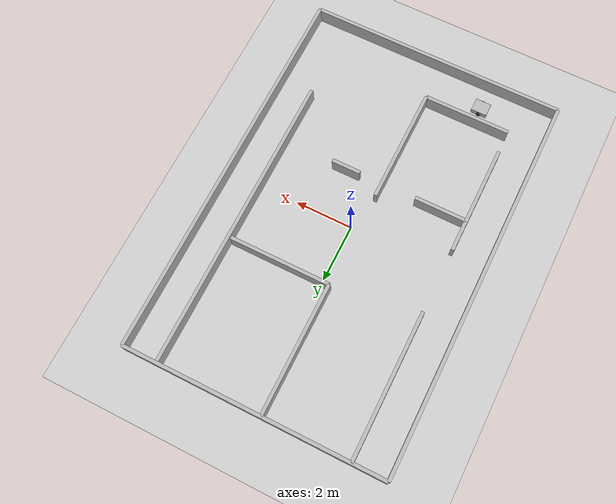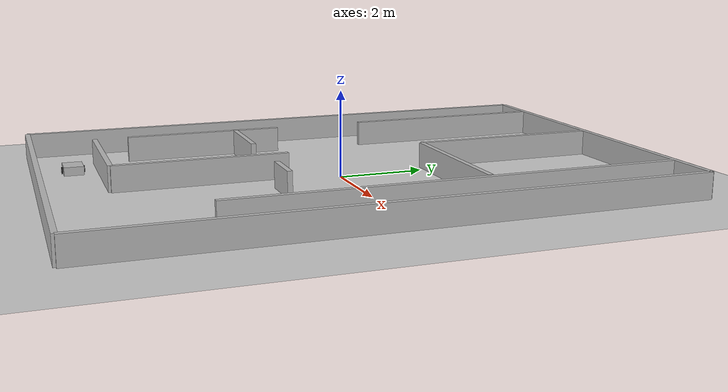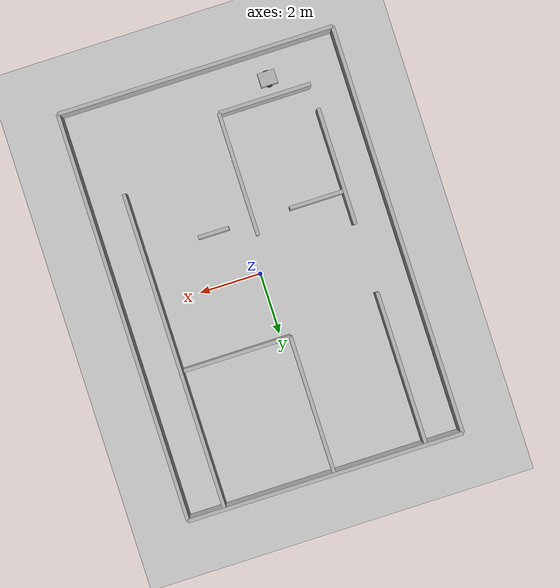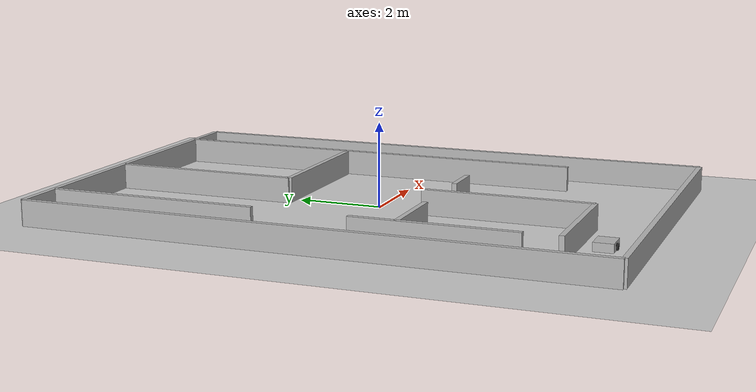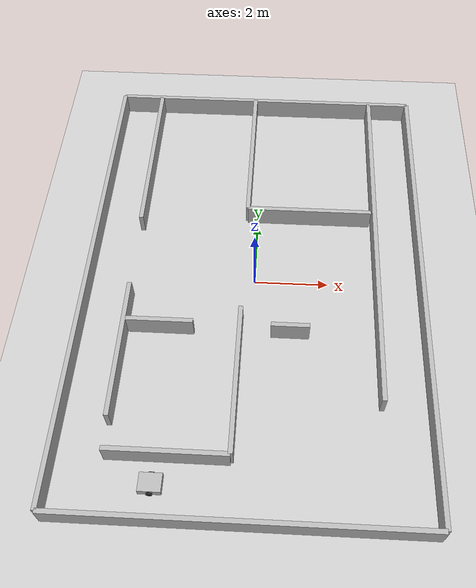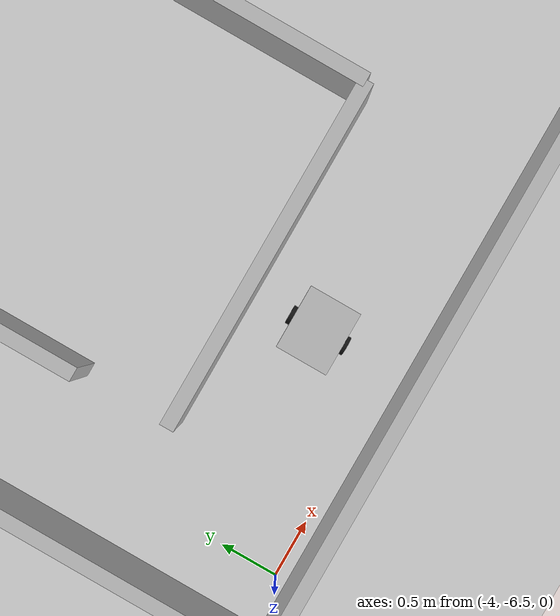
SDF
<?xml version="1.0"?>
<sdf version="1.7">
  <world name="competition_home">
    <gui fullscreen="0">
      <camera name="user_camera">
        <pose>0 0 18 0 1.5708 0</pose>
        <view_controller>orbit</view_controller>
        <projection_type>perspective</projection_type>
      </camera>
    </gui>
    <gravity>0 0 -9.81</gravity>
    <scene><ambient>0.7 0.7 0.7 1</ambient><background>0.15 0.15 0.15 1</background></scene>
    <physics name="default_physics" type="ode"><max_step_size>0.004</max_step_size><real_time_factor>1</real_time_factor></physics>
    <include><uri>model://ground_plane</uri></include>
    <include><uri>model://sun</uri></include>
    <model name="arena_walls">
      <static>true</static>
      <link name="walls">
        <collision name="outer_top"><geometry><box><size>9.0 0.12 0.6</size></box></geometry><pose>0 6.665 0.3 0 0 0</pose></collision>
        <visual name="v_outer_top"><geometry><box><size>9.0 0.12 0.6</size></box></geometry><pose>0 6.665 0.3 0 0 0</pose></visual>
        <collision name="outer_bottom"><geometry><box><size>9.0 0.12 0.6</size></box></geometry><pose>0 -6.665 0.3 0 0 0</pose></collision>
        <visual name="v_outer_bottom"><geometry><box><size>9.0 0.12 0.6</size></box></geometry><pose>0 -6.665 0.3 0 0 0</pose></visual>
        <collision name="outer_left"><geometry><box><size>0.12 13.33 0.6</size></box></geometry><pose>-4.5 0 0.3 0 0 0</pose></collision>
        <visual name="v_outer_left"><geometry><box><size>0.12 13.33 0.6</size></box></geometry><pose>-4.5 0 0.3 0 0 0</pose></visual>
        <collision name="outer_right"><geometry><box><size>0.12 13.33 0.6</size></box></geometry><pose>4.5 0 0.3 0 0 0</pose></collision>
        <visual name="v_outer_right"><geometry><box><size>0.12 13.33 0.6</size></box></geometry><pose>4.5 0 0.3 0 0 0</pose></visual>
        <!-- Inner side walls. Door openings are represented by separate segments. -->
        <collision name="inner_left_top"><geometry><box><size>0.12 5.0 0.6</size></box></geometry><pose>-3.3 4.165 0.3 0 0 0</pose></collision>
        <visual name="v_inner_left_top"><geometry><box><size>0.12 5.0 0.6</size></box></geometry><pose>-3.3 4.165 0.3 0 0 0</pose></visual>
        <collision name="inner_left_bottom"><geometry><box><size>0.12 3.8 0.6</size></box></geometry><pose>-3.3 -2.465 0.3 0 0 0</pose></collision>
        <visual name="v_inner_left_bottom"><geometry><box><size>0.12 3.8 0.6</size></box></geometry><pose>-3.3 -2.465 0.3 0 0 0</pose></visual>
        <collision name="inner_right"><geometry><box><size>0.12 10.33 0.6</size></box></geometry><pose>3.3 1.5 0.3 0 0 0</pose></collision>
        <visual name="v_inner_right"><geometry><box><size>0.12 10.33 0.6</size></box></geometry><pose>3.3 1.5 0.3 0 0 0</pose></visual>
        <!-- Bedroom: 3.50 m wide and 4.50 m deep. -->
        <collision name="bedroom_left"><geometry><box><size>0.12 4.5 0.6</size></box></geometry><pose>-0.3 4.415 0.3 0 0 0</pose></collision>
        <visual name="v_bedroom_left"><geometry><box><size>0.12 4.5 0.6</size></box></geometry><pose>-0.3 4.415 0.3 0 0 0</pose></visual>
        <collision name="bedroom_bottom"><geometry><box><size>3.5 0.12 0.6</size></box></geometry><pose>1.45 2.165 0.3 0 0 0</pose></collision>
        <visual name="v_bedroom_bottom"><geometry><box><size>3.5 0.12 0.6</size></box></geometry><pose>1.45 2.165 0.3 0 0 0</pose></visual>
        <!-- Study: 3.00 m wide and 4.00 m deep. -->
        <collision name="study_right"><geometry><box><size>0.12 4.0 0.6</size></box></geometry><pose>-0.3 -3.165 0.3 0 0 0</pose></collision>
        <visual name="v_study_right"><geometry><box><size>0.12 4.0 0.6</size></box></geometry><pose>-0.3 -3.165 0.3 0 0 0</pose></visual>
        <collision name="study_bottom"><geometry><box><size>3.0 0.12 0.6</size></box></geometry><pose>-1.8 -5.165 0.3 0 0 0</pose></collision>
        <visual name="v_study_bottom"><geometry><box><size>3.0 0.12 0.6</size></box></geometry><pose>-1.8 -5.165 0.3 0 0 0</pose></visual>
        <!-- Living/study partition with a 0.80 m door opening. -->
        <collision name="partition_left"><geometry><box><size>1.8 0.12 0.6</size></box></geometry><pose>-2.4 -1.665 0.3 0 0 0</pose></collision>
        <visual name="v_partition_left"><geometry><box><size>1.8 0.12 0.6</size></box></geometry><pose>-2.4 -1.665 0.3 0 0 0</pose></visual>
        <collision name="partition_right"><geometry><box><size>1.0 0.12 0.6</size></box></geometry><pose>1.0 -1.665 0.3 0 0 0</pose></collision>
        <visual name="v_partition_right"><geometry><box><size>1.0 0.12 0.6</size></box></geometry><pose>1.0 -1.665 0.3 0 0 0</pose></visual>
      </link>
    </model>
    <!-- Furniture placeholders aligned with the supplied plan. -->
    <model name="dining_table"><static>true</static><pose>-2.1 4.2 0.35 0 0 0</pose><link name="link"><collision name="c"><geometry><box><size>1.4 0.8 0.7</size></box></geometry></collision></link></model>
    <model name="bed"><static>true</static><pose>1.45 4.2 0.3 0 0 0</pose><link name="link"><collision name="c"><geometry><box><size>1.8 1.0 0.6</size></box></geometry></collision></link></model>
    <model name="living_sofa"><static>true</static><pose>1.2 -0.2 0.25 0 0 0</pose><link name="link"><collision name="c"><geometry><box><size>1.5 0.55 0.5</size></box></geometry></collision></link></model>
    <model name="desk"><static>true</static><pose>-1.8 -3.6 0.35 0 0 0</pose><link name="link"><collision name="c"><geometry><box><size>1.3 0.65 0.7</size></box></geometry></collision></link></model>
    <model name="robocup_mecanum_sim">
      <pose>-2.1 -5.8 0.18 0 0 0</pose>
      <link name="base_link">
        <inertial><mass>12</mass><inertia><ixx>1.0</ixx><iyy>1.0</iyy><izz>1.0</izz><ixy>0</ixy><ixz>0</ixz><iyz>0</iyz></inertia></inertial>
        <collision name="base_collision">
          <pose>0 0 0.02 0 0 0</pose>
          <geometry><box><size>0.55 0.45 0.16</size></box></geometry>
          <surface><friction><ode><mu>0.05</mu><mu2>0.05</mu2></ode></friction></surface>
        </collision>
      <visual name="base_visual"><geometry><box><size>0.55 0.45 0.20</size></box></geometry></visual>
        <sensor name="laser" type="ray">
          <pose>0 0 0.23 0 0 0</pose><update_rate>10</update_rate>
          <ray><scan><horizontal><samples>720</samples><resolution>1</resolution><min_angle>-3.14159</min_angle><max_angle>3.14159</max_angle></horizontal></scan><range><min>0.12</min><max>12</max><resolution>0.01</resolution></range></ray>
          <plugin name="ray_sensor" filename="libgazebo_ros_ray_sensor.so">
            <ros>
              <namespace>/</namespace>
              <remapping>~/out:=scan</remapping>
            </ros>
            <output_type>sensor_msgs/LaserScan</output_type>
          </plugin>
        </sensor>
        <sensor name="imu" type="imu"><pose>0 0 0.25 0 0 0</pose><always_on>true</always_on><update_rate>50</update_rate>
          <imu>
            <angular_velocity>
              <x><noise type="gaussian"><mean>0.0</mean><stddev>2e-4</stddev></noise></x>
              <y><noise type="gaussian"><mean>0.0</mean><stddev>2e-4</stddev></noise></y>
              <z><noise type="gaussian"><mean>0.0</mean><stddev>2e-4</stddev></noise></z>
            </angular_velocity>
            <linear_acceleration>
              <x><noise type="gaussian"><mean>0.0</mean><stddev>1.7e-2</stddev></noise></x>
              <y><noise type="gaussian"><mean>0.0</mean><stddev>1.7e-2</stddev></noise></y>
              <z><noise type="gaussian"><mean>0.0</mean><stddev>1.7e-2</stddev></noise></z>
            </linear_acceleration>
          </imu>
          <plugin name="imu_plugin" filename="libgazebo_ros_imu_sensor.so">
            <ros>
              <namespace>/</namespace>
              <remapping>~/out:=imu/data</remapping>
            </ros>
            <frame_name>base_link</frame_name>
            <initial_orientation_as_reference>false</initial_orientation_as_reference>
          </plugin>
        </sensor>
      </link>
      <link name="camera_link">
        <pose>0.20 0 0.48 0 0 0</pose>
        <sensor name="rgbd_camera" type="camera"><update_rate>15</update_rate><camera><horizontal_fov>1.047</horizontal_fov><image><width>640</width><height>480</height><format>R8G8B8</format></image><clip><near>0.1</near><far>10</far></clip></camera>
          <plugin name="camera_controller" filename="libgazebo_ros_camera.so">
            <ros>
              <namespace>/camera</namespace>
              <remapping>camera1/image_raw:=color/image_raw</remapping>
              <remapping>camera_info:=color/camera_info</remapping>
            </ros>
            <frame_name>camera_link</frame_name>
          </plugin>
        </sensor>
      </link>
      <joint name="camera_joint" type="fixed"><parent>base_link</parent><child>camera_link</child></joint>
      <plugin name="diff_drive" filename="libgazebo_ros_diff_drive.so">
        <ros>
          <namespace>/</namespace>
          <remapping>cmd_vel:=cmd_vel</remapping>
          <remapping>odom:=odom</remapping>
        </ros>
        <left_joint>left_wheel_joint</left_joint><right_joint>right_wheel_joint</right_joint>
        <wheel_separation>0.42</wheel_separation><wheel_diameter>0.16</wheel_diameter>
        <max_wheel_torque>20</max_wheel_torque><max_wheel_acceleration>1.0</max_wheel_acceleration>
        <publish_odom>true</publish_odom><publish_odom_tf>true</publish_odom_tf><publish_wheel_tf>true</publish_wheel_tf>
        <odometry_frame>odom</odometry_frame><robot_base_frame>base_link</robot_base_frame>
      </plugin>
      <link name="left_wheel"><pose>0 0.24 -0.02 1.5708 0 0</pose><collision name="c"><geometry><cylinder><radius>0.08</radius><length>0.04</length></cylinder></geometry><surface><friction><ode><mu>2.0</mu><mu2>2.0</mu2></ode></friction></surface></collision><visual name="wheel_visual"><geometry><cylinder><radius>0.08</radius><length>0.04</length></cylinder></geometry><material><ambient>0.08 0.08 0.08 1</ambient><diffuse>0.08 0.08 0.08 1</diffuse></material></visual></link>
      <link name="right_wheel"><pose>0 -0.24 -0.02 1.5708 0 0</pose><collision name="c"><geometry><cylinder><radius>0.08</radius><length>0.04</length></cylinder></geometry><surface><friction><ode><mu>2.0</mu><mu2>2.0</mu2></ode></friction></surface></collision><visual name="wheel_visual"><geometry><cylinder><radius>0.08</radius><length>0.04</length></cylinder></geometry><material><ambient>0.08 0.08 0.08 1</ambient><diffuse>0.08 0.08 0.08 1</diffuse></material></visual></link>
      <joint name="left_wheel_joint" type="revolute"><parent>base_link</parent><child>left_wheel</child><axis><xyz>0 1 0</xyz><limit><lower>-1e16</lower><upper>1e16</upper></limit></axis></joint>
      <joint name="right_wheel_joint" type="revolute"><parent>base_link</parent><child>right_wheel</child><axis><xyz>0 1 0</xyz><limit><lower>-1e16</lower><upper>1e16</upper></limit></axis></joint>
    </model>
  </world>
</sdf>
